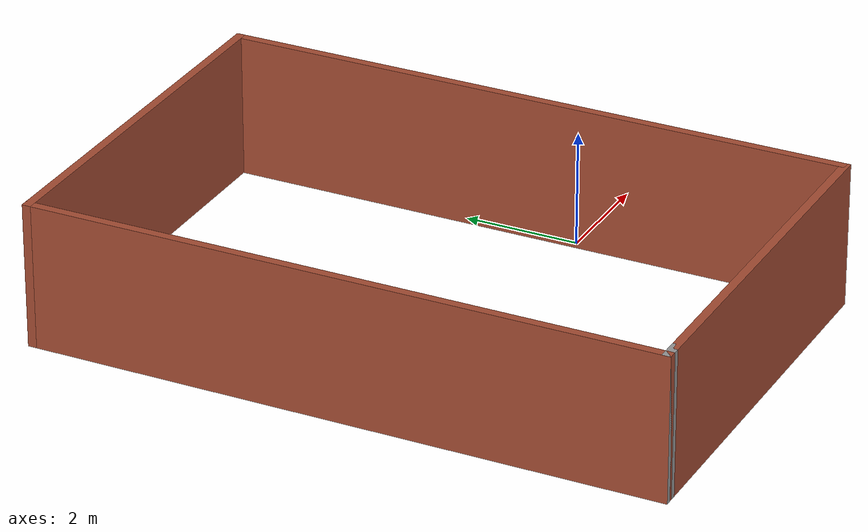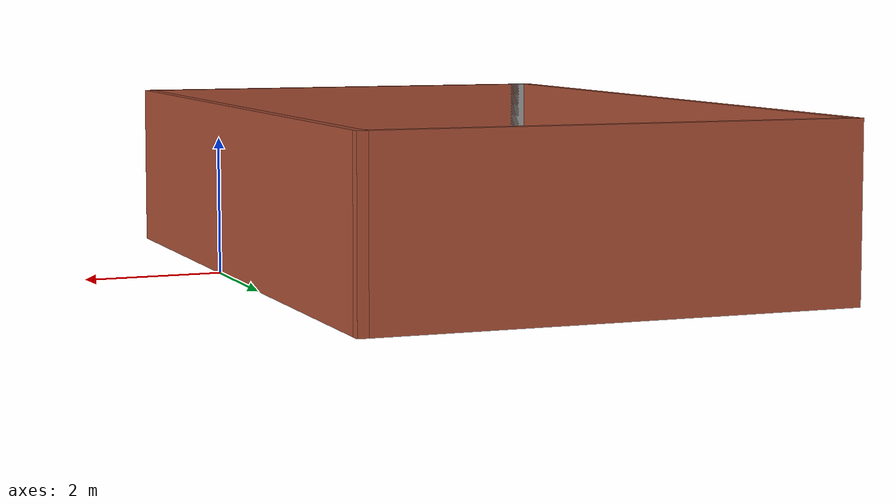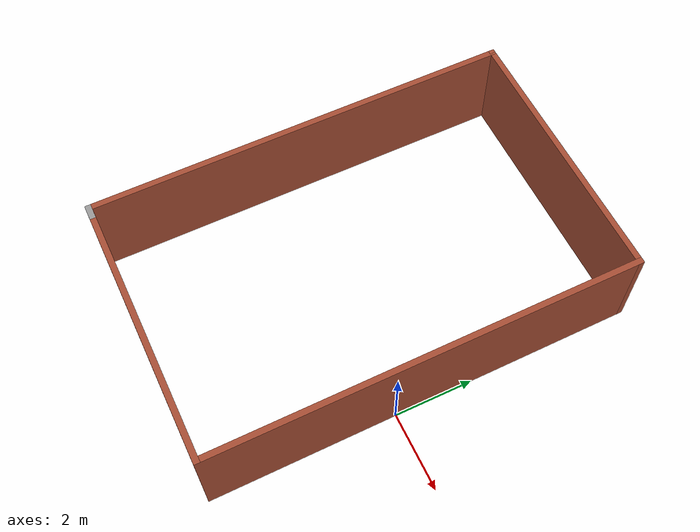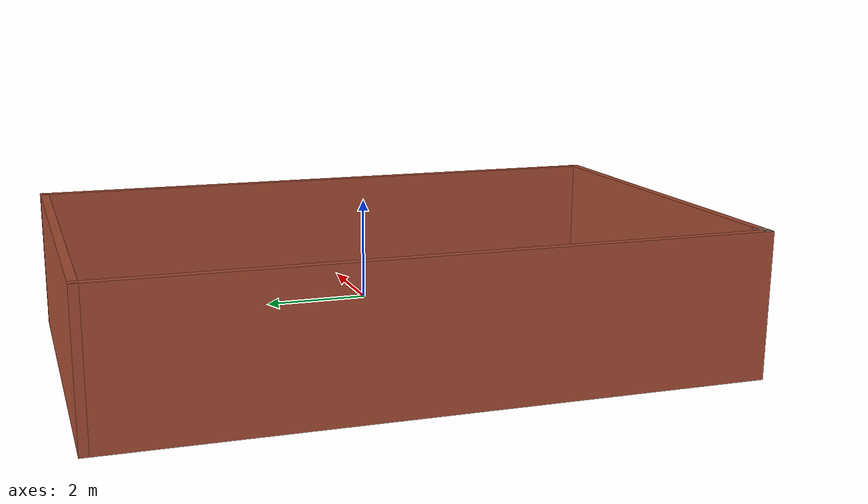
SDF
<?xml version='1.0'?>
<sdf version='1.7'>
  <model name='small_room.world'>
    <pose>-3.49717 0.773329 0 0 -0 0</pose>
    <link name='Wall_1'>
      <collision name='Wall_1_Collision'>
        <geometry>
          <box>
            <size>6.75 0.15 2.5</size>
          </box>
        </geometry>
        <pose>0 0 1.25 0 -0 0</pose>
      </collision>
      <visual name='Wall_1_Visual'>
        <pose>0 0 1.25 0 -0 0</pose>
        <geometry>
          <box>
            <size>6.75 0.15 2.5</size>
          </box>
        </geometry>
        <material>
          <script>
            <uri>file://media/materials/scripts/gazebo.material</uri>
            <name>Gazebo/Bricks</name>
          </script>
          <ambient>1 1 1 1</ambient>
        </material>
        <meta>
          <layer>0</layer>
        </meta>
      </visual>
      <pose>0.125 -5.425 0 0 -0 0</pose>
    </link>
    <link name='Wall_2'>
      <collision name='Wall_2_Collision'>
        <geometry>
          <box>
            <size>11 0.15 2.5</size>
          </box>
        </geometry>
        <pose>0 0 1.25 0 -0 0</pose>
      </collision>
      <visual name='Wall_2_Visual'>
        <pose>0 0 1.25 0 -0 0</pose>
        <geometry>
          <box>
            <size>11 0.15 2.5</size>
          </box>
        </geometry>
        <material>
          <script>
            <uri>file://media/materials/scripts/gazebo.material</uri>
            <name>Gazebo/Bricks</name>
          </script>
          <ambient>1 1 1 1</ambient>
        </material>
        <meta>
          <layer>0</layer>
        </meta>
      </visual>
      <pose>3.425 -0 0 0 -0 1.5708</pose>
    </link>
    <link name='Wall_3'>
      <collision name='Wall_3_Collision'>
        <geometry>
          <box>
            <size>7 0.15 2.5</size>
          </box>
        </geometry>
        <pose>0 0 1.25 0 -0 0</pose>
      </collision>
      <visual name='Wall_3_Visual'>
        <pose>0 0 1.25 0 -0 0</pose>
        <geometry>
          <box>
            <size>7 0.15 2.5</size>
          </box>
        </geometry>
        <material>
          <script>
            <uri>file://media/materials/scripts/gazebo.material</uri>
            <name>Gazebo/Bricks</name>
          </script>
          <ambient>1 1 1 1</ambient>
        </material>
        <meta>
          <layer>0</layer>
        </meta>
      </visual>
      <pose>0 5.425 0 0 -0 3.14159</pose>
    </link>
    <link name='Wall_4'>
      <collision name='Wall_4_Collision'>
        <geometry>
          <box>
            <size>11 0.15 2.5</size>
          </box>
        </geometry>
        <pose>0 0 1.25 0 -0 0</pose>
      </collision>
      <visual name='Wall_4_Visual'>
        <pose>0 0 1.25 0 -0 0</pose>
        <geometry>
          <box>
            <size>11 0.15 2.5</size>
          </box>
        </geometry>
        <material>
          <script>
            <uri>file://media/materials/scripts/gazebo.material</uri>
            <name>Gazebo/Bricks</name>
          </script>
          <ambient>1 1 1 1</ambient>
        </material>
        <meta>
          <layer>0</layer>
        </meta>
      </visual>
      <pose>-3.425 -0 0 0 -0 -1.5708</pose>
    </link>
    <link name='Wall_5'>
      <collision name='Wall_5_Collision'>
        <geometry>
          <box>
            <size>0.4 0.15 2.5</size>
          </box>
        </geometry>
        <pose>0 0 1.25 0 -0 0</pose>
      </collision>
      <visual name='Wall_5_Visual'>
        <pose>0 0 1.25 0 -0 0</pose>
        <geometry>
          <box>
            <size>0.4 0.15 2.5</size>
          </box>
        </geometry>
        <material>
          <script>
            <uri>file://media/materials/scripts/gazebo.material</uri>
            <name>Gazebo/Grey</name>
          </script>
          <ambient>1 1 1 1</ambient>
        </material>
        <meta>
          <layer>0</layer>
        </meta>
      </visual>
      <pose>-3.3 -5.425 0 0 -0 0</pose>
    </link>
    <static>1</static>
  </model>
</sdf>
